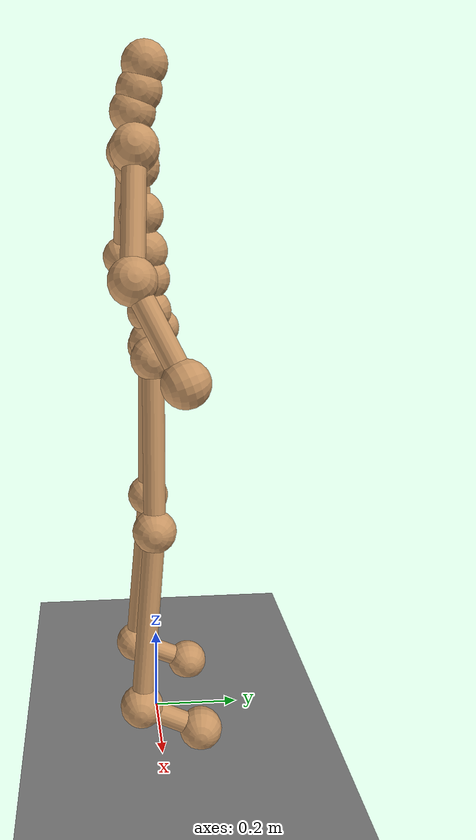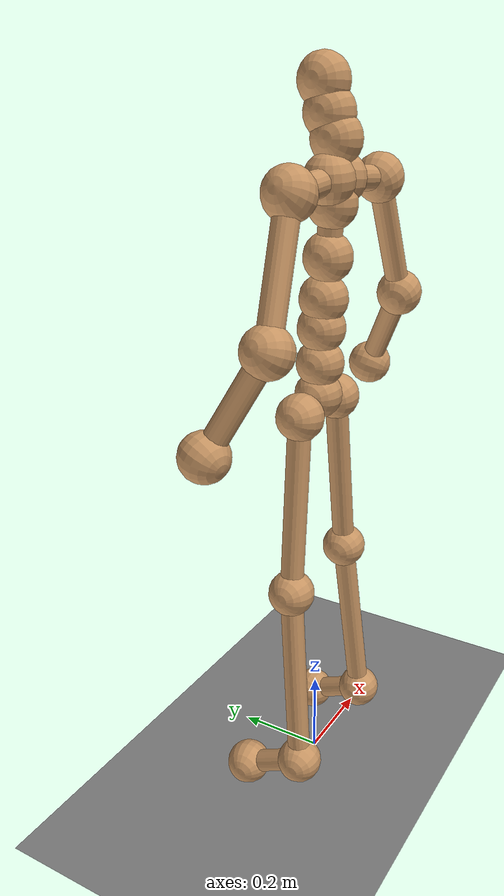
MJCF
<!-- Human model from - https://colab.research.google.com/drive/154YTdflNrLCGHZ98jPSt_TZeafrYqFR-?usp=sharing#scrollTo=NFxtQ6G12r8S -->
<mujoco>
    <option gravity="0 0 0" />
    <worldbody>
        <geom type="plane" pos="0 0 0" size="10 10 0.1" material="floor_material" />
        <body name="pelvis" mocap="true" pos="1.2400539848490296e-16 -0.007071309722959995 0.9311913251876831" quat="-0.7069933123978012 0.012667131671581075 0.7069933123978012 -0.012667131671581075">
            <geom type="sphere" size="0.05" density="1000" rgba="0.8 0.6 0.4 1" />
            <geom type="capsule" size="0.025"
                fromto="0.0 0.0 0.0 0.06749367713928223 -0.00638774037361145 -5.3054370284229355e-15"
                density="1000" rgba="0.8 0.6 0.4 1" />
            <geom type="capsule" size="0.025"
                fromto="0.0 0.0 0.0 -0.025693297386169434 -0.00010870397090911865 -0.07750068604946136"
                density="1000" rgba="0.8 0.6 0.4 1" />
            <geom type="capsule" size="0.025"
                fromto="0.0 0.0 0.0 -0.02569139003753662 -0.00010874494910240173 0.07750062644481659"
                density="1000" rgba="0.8 0.6 0.4 1" />
            <body name="spine_01"
                pos="0.06749367713928223 -0.00638774037361145 -5.3054370284229355e-15"
                quat="0.9994206427890385 2.3362404552790525e-18 1.0090234167493236e-17 -0.034034963892227064">
                <geom type="sphere" size="0.05" density="1000" rgba="0.8 0.6 0.4 1" />
                <joint type="ball" name="joint_spine_01" />
                <geom type="capsule" size="0.025"
                    fromto="0.0 0.0 0.0 0.07251763343811035 -0.00034980475902557373 -1.5774199709026743e-14"
                    density="1000" rgba="0.8 0.6 0.4 1" />
                <body name="spine_02"
                    pos="0.07251763343811035 -0.00034980475902557373 -1.5774199709026743e-14"
                    quat="0.9997177507990976 5.392413112454937e-23 -2.2919371771182243e-22 -0.023757498546636644">
                    <geom type="sphere" size="0.05" density="1000" rgba="0.8 0.6 0.4 1" />
                    <joint type="ball" name="joint_spine_02" />
                    <geom type="capsule" size="0.025"
                        fromto="0.0 0.0 0.0 0.06010448932647705 0.0 2.104476904969243e-14"
                        density="1000" rgba="0.8 0.6 0.4 1" />
                    <body name="spine_03" pos="0.06010448932647705 0.0 2.104476904969243e-14"
                        quat="0.9998893492393578 6.442381829385969e-23 6.845677000085893e-22 -0.014875795027281036">
                        <geom type="sphere" size="0.05" density="1000" rgba="0.8 0.6 0.4 1" />
                        <joint type="ball" name="joint_spine_03" />
                        <geom type="capsule" size="0.025"
                            fromto="0.0 0.0 0.0 0.0810236930847168 1.4901161193847656e-08 -2.8308088430859316e-14"
                            density="1000" rgba="0.8 0.6 0.4 1" />
                        <body name="spine_04"
                            pos="0.0810236930847168 1.4901161193847656e-08 -2.8308088430859316e-14"
                            quat="0.9999134362924395 6.762786830704167e-23 1.323603538731091e-22 0.01315750439276834">
                            <geom type="sphere" size="0.05" density="1000" rgba="0.8 0.6 0.4 1" />
                            <joint type="ball" name="joint_spine_04" />
                            <geom type="capsule" size="0.025"
                                fromto="0.0 0.0 0.0 0.10014617443084717 0.0 4.948447793022559e-14"
                                density="1000" rgba="0.8 0.6 0.4 1" />
                            <body name="spine_05"
                                pos="0.10014617443084717 0.0 4.948447793022559e-14"
                                quat="0.9999988838707776 4.8984655985788956e-23 -5.997066062640126e-22 0.0014940740273561408">
                                <geom type="sphere" size="0.05" density="1000" rgba="0.8 0.6 0.4 1" />
                                <joint type="ball" name="joint_spine_05" />
                                <geom type="capsule" size="0.025"
                                    fromto="0.0 0.0 0.0 0.04357445240020752 -0.001465722918510437 -0.023223210126161575"
                                    density="1000" rgba="0.8 0.6 0.4 1" />
                                <geom type="capsule" size="0.025"
                                    fromto="0.0 0.0 0.0 0.043575406074523926 -0.0014655888080596924 0.023223280906677246"
                                    density="1000" rgba="0.8 0.6 0.4 1" />
                                <geom type="capsule" size="0.025"
                                    fromto="0.0 0.0 0.0 0.11313807964324951 0.001528620719909668 -2.3156799963891875e-14"
                                    density="1000" rgba="0.8 0.6 0.4 1" />
                                <body name="clavicle_l"
                                    pos="0.04357445240020752 -0.001465722918510437 -0.023223210126161575"
                                    quat="0.6829487044068947 -0.04647542493978803 0.7289309223867121 0.008989572518595777">
                                    <geom type="sphere" size="0.05" density="1000" rgba="0.8 0.6 0.4 1" />
                                    <joint type="ball" name="joint_clavicle_l" />
                                    <geom type="capsule" size="0.025"
                                        fromto="0.0 0.0 0.0 0.1551109254360199 0.0 1.1920928955078125e-07"
                                        density="1000" rgba="0.8 0.6 0.4 1" />
                                    <body name="upperarm_l"
                                        pos="0.1551109254360199 0.0 1.1920928955078125e-07"
                                        quat="0.8436629524964866 -0.030462773804957186 0.5359774300853403 0.005747733129975311">
                                        <geom type="sphere" size="0.05" density="1000" rgba="0.8 0.6 0.4 1" />
                                        <joint type="ball" name="joint_upperarm_l" />
                                        <geom type="capsule" size="0.025"
                                            fromto="0.0 0.0 0.0 0.2665136456489563 0.0 0.0"
                                            density="1000" rgba="0.8 0.6 0.4 1" />
                                        <body name="lowerarm_l" pos="0.2665136456489563 0.0 0.0"
                                            quat="0.9686191585618291 -0.039058773569420266 0.009890000242635354 0.24526215723064054">
                                            <geom type="sphere" size="0.05" density="1000" rgba="0.8 0.6 0.4 1" />
                                            <joint type="ball" name="joint_lowerarm_l" />
                                            <geom type="capsule" size="0.025"
                                                fromto="0.0 0.0 0.0 0.223491370677948 0.0 0.0"
                                                density="1000" rgba="0.8 0.6 0.4 1" />
                                            <body name="hand_l" pos="0.223491370677948 0.0 0.0"
                                                quat="0.6975021136747361 0.7081025972512259 0.050679966201636166 -0.09753488714887959">
                                                <geom type="sphere" size="0.05" density="1000" rgba="0.8 0.6 0.4 1" />
                                                <joint type="ball" name="joint_hand_l" />
                                            </body>
                                        </body>
                                    </body>
                                </body>
                                <body name="clavicle_r"
                                    pos="0.043575406074523926 -0.0014655888080596924 0.023223280906677246"
                                    quat="0.008989572518595779 0.7289309223867122 0.04647542493978804 -0.6829487044068948">
                                    <geom type="sphere" size="0.05" density="1000" rgba="0.8 0.6 0.4 1" />
                                    <joint type="ball" name="joint_clavicle_r" />
                                    <geom type="capsule" size="0.025"
                                        fromto="0.0 0.0 0.0 -0.15511080622673035 -1.043081283569336e-07 -1.1920928955078125e-07"
                                        density="1000" rgba="0.8 0.6 0.4 1" />
                                    <body name="upperarm_r"
                                        pos="-0.15511080622673035 -1.043081283569336e-07 -1.1920928955078125e-07"
                                        quat="0.8436629524964866 -0.030462773804957186 0.5359774300853403 0.005747733129975311">
                                        <geom type="sphere" size="0.05" density="1000" rgba="0.8 0.6 0.4 1" />
                                        <joint type="ball" name="joint_upperarm_r" />
                                        <geom type="capsule" size="0.025"
                                            fromto="0.0 0.0 0.0 -0.26651448011398315 1.4901161193847656e-08 0.0"
                                            density="1000" rgba="0.8 0.6 0.4 1" />
                                        <body name="lowerarm_r"
                                            pos="-0.26651448011398315 1.4901161193847656e-08 0.0"
                                            quat="0.9686191585618291 -0.039058773569420266 0.009890000242635354 0.24526215723064054">
                                            <geom type="sphere" size="0.05" density="1000" rgba="0.8 0.6 0.4 1" />
                                            <joint type="ball" name="joint_lowerarm_r" />
                                            <geom type="capsule" size="0.025"
                                                fromto="0.0 0.0 0.0 -0.22349244356155396 5.960464477539063e-08 5.960464477539063e-08"
                                                density="1000" rgba="0.8 0.6 0.4 1" />
                                            <body name="hand_r"
                                                pos="-0.22349244356155396 5.960464477539063e-08 5.960464477539063e-08"
                                                quat="0.6975021136747361 0.7081025972512259 0.050679966201636166 -0.09753488714887959">
                                                <geom type="sphere" size="0.05" density="1000" rgba="0.8 0.6 0.4 1" />
                                                <joint type="ball" name="joint_hand_r" />
                                            </body>
                                        </body>
                                    </body>
                                </body>
                                <body name="neck_01"
                                    pos="0.11313807964324951 0.001528620719909668 -2.3156799963891875e-14"
                                    quat="0.979739387686268 -7.759519592020889e-23 -2.5835163497133134e-22 0.20027663921720062">
                                    <geom type="sphere" size="0.05" density="1000" rgba="0.8 0.6 0.4 1" />
                                    <joint type="ball" name="joint_neck_01" />
                                    <geom type="capsule" size="0.025"
                                        fromto="0.0 0.0 0.0 0.04562675952911377 0.0 -4.467488933044411e-16"
                                        density="1000" rgba="0.8 0.6 0.4 1" />
                                    <body name="neck_02"
                                        pos="0.04562675952911377 0.0 -4.467488933044411e-16"
                                        quat="0.9987275844696399 -2.976467671374415e-22 -1.0526860272186105e-21 -0.050430268881280355">
                                        <geom type="sphere" size="0.05" density="1000" rgba="0.8 0.6 0.4 1" />
                                        <joint type="ball" name="joint_neck_02" />
                                        <geom type="capsule" size="0.025"
                                            fromto="0.0 0.0 0.0 0.05391383171081543 0.0 -1.1647306535721548e-15"
                                            density="1000" rgba="0.8 0.6 0.4 1" />
                                        <body name="head"
                                            pos="0.05391383171081543 0.0 -1.1647306535721548e-15"
                                            quat="0.9933705878621503 1.1486719478815802e-22 5.2460160773161134e-23 -0.11495597057311105">
                                            <geom type="sphere" size="0.05" density="1000" rgba="0.8 0.6 0.4 1" />
                                            <joint type="ball" name="joint_head" />
                                        </body>
                                    </body>
                                </body>
                            </body>
                        </body>
                    </body>
                </body>
            </body>
            <body name="thigh_l"
                pos="-0.025693297386169434 -0.00010870397090911865 -0.07750068604946136"
                quat="0.9982444406463985 -0.0012370699081630204 -0.0571613282515377 -0.015462500739568058">
                <geom type="sphere" size="0.05" density="1000" rgba="0.8 0.6 0.4 1" />
                <joint type="ball" name="joint_thigh_l" />
                <geom type="capsule" size="0.025"
                    fromto="0.0 0.0 0.0 -0.39048439264297485 9.313225746154785e-10 0.0"
                    density="1000" rgba="0.8 0.6 0.4 1" />
                <body name="calf_l" pos="-0.39048439264297485 9.313225746154785e-10 0.0"
                    quat="0.9991078205558419 -0.0006403708434938144 0.01606467134332963 0.03905226195714184">
                    <geom type="sphere" size="0.05" density="1000" rgba="0.8 0.6 0.4 1" />
                    <joint type="ball" name="joint_calf_l" />
                    <geom type="capsule" size="0.025"
                        fromto="0.0 0.0 0.0 -0.42561033368110657 0.0010773949325084686 0.004291892051696777"
                        density="1000" rgba="0.8 0.6 0.4 1" />
                    <body name="foot_l"
                        pos="-0.42561033368110657 0.0010773949325084686 0.004291892051696777"
                        quat="0.997500889014535 -0.04178496437378156 0.045505050896279806 -0.03428240817709532">
                        <geom type="sphere" size="0.05" density="1000" rgba="0.8 0.6 0.4 1" />
                        <joint type="ball" name="joint_foot_l" />
                        <geom type="capsule" size="0.025"
                            fromto="0.0 0.0 0.0 -0.06159850209951401 0.13826413452625275 0.006806045770645142"
                            density="1000" rgba="0.8 0.6 0.4 1" />
                        <body name="ball_l"
                            pos="-0.06159850209951401 0.13826413452625275 0.006806045770645142"
                            quat="0.7079318965314102 -6.0294361177534856e-05 6.043667739381551e-05 0.7062806967385125">
                            <geom type="sphere" size="0.05" density="1000" rgba="0.8 0.6 0.4 1" />
                            <joint type="ball" name="joint_ball_l" />
                        </body>
                    </body>
                </body>
            </body>
            <body name="thigh_r"
                pos="-0.02569139003753662 -0.00010874494910240173 0.07750062644481659"
                quat="0.015462500739568058 0.0571613282515377 -0.0012370699081630204 0.9982444406463985">
                <geom type="sphere" size="0.05" density="1000" rgba="0.8 0.6 0.4 1" />
                <joint type="ball" name="joint_thigh_r" />
                <geom type="capsule" size="0.025"
                    fromto="0.0 0.0 0.0 0.39048659801483154 -2.2351741790771484e-08 0.0"
                    density="1000" rgba="0.8 0.6 0.4 1" />
                <body name="calf_r" pos="0.39048659801483154 -2.2351741790771484e-08 0.0"
                    quat="0.9991078205558419 -0.0006403708434938144 0.01606467134332963 0.03905226195714184">
                    <geom type="sphere" size="0.05" density="1000" rgba="0.8 0.6 0.4 1" />
                    <joint type="ball" name="joint_calf_r" />
                    <geom type="capsule" size="0.025"
                        fromto="0.0 0.0 0.0 0.42561158537864685 -0.0010772906243801117 -0.004292041063308716"
                        density="1000" rgba="0.8 0.6 0.4 1" />
                    <body name="foot_r"
                        pos="0.42561158537864685 -0.0010772906243801117 -0.004292041063308716"
                        quat="0.997500889014535 -0.04178496437378156 0.045505050896279806 -0.03428240817709532">
                        <geom type="sphere" size="0.05" density="1000" rgba="0.8 0.6 0.4 1" />
                        <joint type="ball" name="joint_foot_r" />
                        <geom type="capsule" size="0.025"
                            fromto="0.0 0.0 0.0 0.06159842759370804 -0.13826420903205872 -0.006806075572967529"
                            density="1000" rgba="0.8 0.6 0.4 1" />
                        <body name="ball_r"
                            pos="0.06159842759370804 -0.13826420903205872 -0.006806075572967529"
                            quat="0.7079318965314102 -6.0294361177534856e-05 6.043667739381551e-05 0.7062806967385125">
                            <geom type="sphere" size="0.05" density="1000" rgba="0.8 0.6 0.4 1" />
                            <joint type="ball" name="joint_ball_r" />
                        </body>
                    </body>
                </body>
            </body>
        </body>
    </worldbody>
    <asset>
        <texture type="2d" name="checkerboard" builtin="checker" rgb1="0 0 0" rgb2="1 1 1"
            width="256" height="256" />
        <material name="floor_material" texture="checkerboard" texrepeat="10 10" rgba="1 1 1 1" />
    </asset>
</mujoco>
